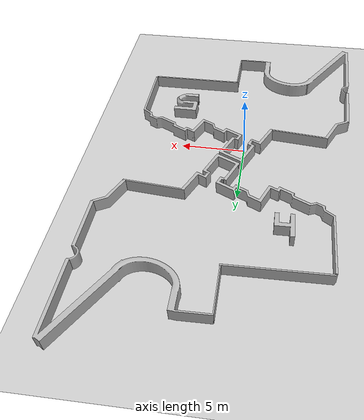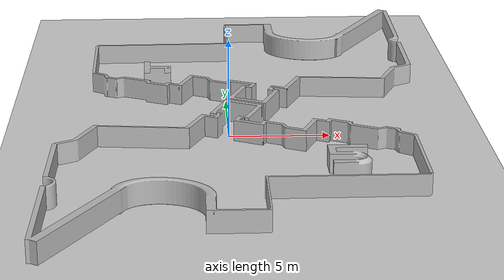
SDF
<?xml version="1.0"?>
<sdf version="1.6">
  <world name="simple_room_with_fixed_boxes">

    <include>
      <uri>model://ground_plane</uri>
    </include>

    <include>
      <uri>model://sun</uri>
    </include>

    <!-- maps -->

    <model name="quinto_andar">
      <static>true</static>
      <pose>-2.540289 -2.030616 0 0 0 0</pose> <!-- x y z roll pitch yaw -->
      <link name="link">
        <visual name="visual">
          <geometry>
            <mesh>
              <uri>file:///home/llagoeiro/FEI/TCC/OmniCare/software/src/omnicare_simulation/simulation/stl/quintoAndar.stl</uri>
              <scale>1 1 1</scale>
            </mesh>
          </geometry>
        </visual>

        <collision name="collision">
          <geometry>
            <mesh>
              <uri>file:///home/llagoeiro/FEI/TCC/OmniCare/software/src/omnicare_simulation/simulation/stl/quintoAndar.stl</uri>
              <scale>1 1 1</scale>
            </mesh>
          </geometry>
        </collision>
      </link>
    </model>

    <model name="quarto_andar">
      <static>true</static>
      <pose>4.336509 6.076185 0 0 0 -3.126995</pose> <!-- x y z roll pitch yaw -->
      <link name="link">
        <visual name="visual">
          <geometry>
            <mesh>
              <uri>file:///home/llagoeiro/FEI/TCC/OmniCare/software/src/omnicare_simulation/simulation/stl/quartoAndar.stl</uri>
              <scale>1 1 1</scale>
            </mesh>
          </geometry>
        </visual>

        <collision name="collision">
          <geometry>
            <mesh>
              <uri>file:///home/llagoeiro/FEI/TCC/OmniCare/software/src/omnicare_simulation/simulation/stl/quartoAndar.stl</uri>
              <scale>1 1 1</scale>
            </mesh>
          </geometry>
        </collision>
      </link>
    </model>

    <plugin name="gazebo_ros_state" filename="libgazebo_ros_state.so">
      <ros>
        <namespace>/gazebo</namespace>
      </ros>
      <update_rate>1.0</update_rate>
    </plugin>

  </world>
</sdf>
